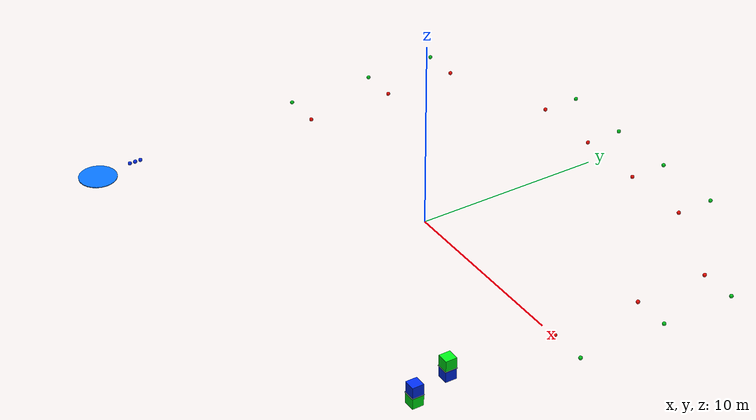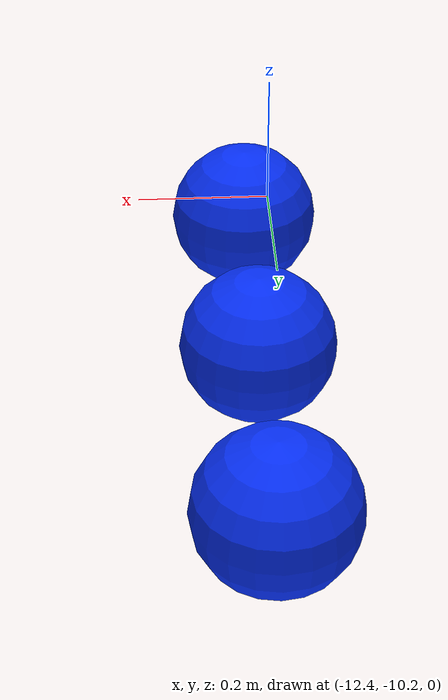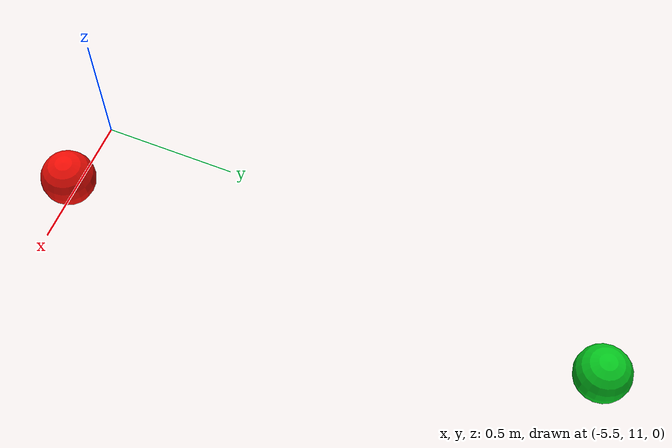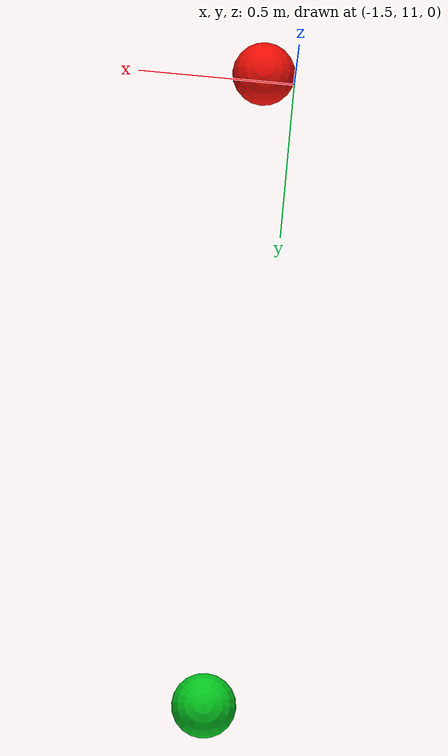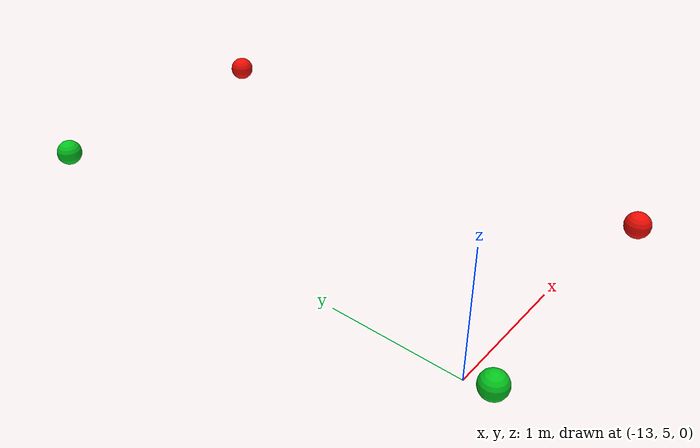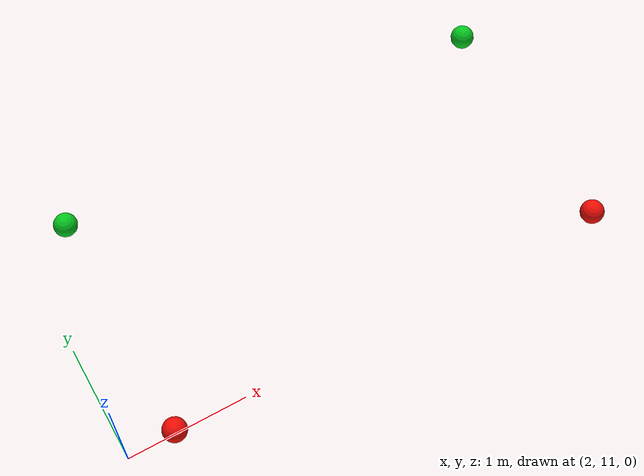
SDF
<sdf version="1.9">
 <world name="kki_2026_lintasan_b">
  <physics name="kki_4ms" type="dart">
   <max_step_size>0.004</max_step_size>
   <real_time_factor>1.0</real_time_factor>
  </physics>
  <spherical_coordinates>
   <surface_model>EARTH_WGS84</surface_model>
   <world_frame_orientation>ENU</world_frame_orientation>
   <latitude_deg>1.470000</latitude_deg>
   <longitude_deg>102.110000</longitude_deg>
   <elevation>0.0</elevation>
   <heading_deg>0</heading_deg>
  </spherical_coordinates>
  <plugin filename="gz-sim-physics-system" name="gz::sim::systems::Physics"/>
  <plugin filename="gz-sim-user-commands-system" name="gz::sim::systems::UserCommands"/>
  <plugin filename="gz-sim-scene-broadcaster-system" name="gz::sim::systems::SceneBroadcaster"/>
  <plugin filename="gz-sim-sensors-system" name="gz::sim::systems::Sensors">
   <render_engine>ogre2</render_engine>
   <background_color>0.70 0.82 0.92</background_color>
  </plugin>
  <plugin filename="gz-sim-imu-system" name="gz::sim::systems::Imu"/>
  <plugin filename="gz-sim-navsat-system" name="gz::sim::systems::NavSat"/>
  <plugin filename="gz-sim-contact-system" name="gz::sim::systems::Contact"/>
  <scene><ambient>0.75 0.78 0.80 1</ambient><background>0.70 0.82 0.92 1</background></scene>
  <light type="directional" name="sun">
   <pose>0 0 40 0 0 0</pose>
   <diffuse>0.95 0.92 0.85 1</diffuse>
   <specular>0.45 0.45 0.45 1</specular>
   <direction>-0.45 0.15 -0.88</direction>
  </light>
  <include>
   <name>start_finish_b</name>
   <pose>-12.200 -11.900 0.020 0.000000 0.000000 0.000000</pose>
   <uri>file:///home/ammar/Documents/asv_simulation/asv_kki_2026_ws/src/asv_gazebo/models/kki_start_finish_marker</uri>
  </include>
  <include>
   <name>docking_b_blue_1</name>
   <pose>-12.350 -10.000 0.100 0.000000 0.000000 0.000000</pose>
   <uri>file:///home/ammar/Documents/asv_simulation/asv_kki_2026_ws/src/asv_gazebo/models/kki_buoy_blue</uri>
  </include>
  <include>
   <name>docking_b_blue_2</name>
   <pose>-12.350 -9.700 0.100 0.000000 0.000000 0.000000</pose>
   <uri>file:///home/ammar/Documents/asv_simulation/asv_kki_2026_ws/src/asv_gazebo/models/kki_buoy_blue</uri>
  </include>
  <include>
   <name>docking_b_blue_3</name>
   <pose>-12.350 -9.400 0.100 0.000000 0.000000 0.000000</pose>
   <uri>file:///home/ammar/Documents/asv_simulation/asv_kki_2026_ws/src/asv_gazebo/models/kki_buoy_blue</uri>
  </include>
  <include>
   <name>left_gate_1_green</name>
   <pose>-13.000 0.000 0.100 0.000000 0.000000 0.000000</pose>
   <uri>file:///home/ammar/Documents/asv_simulation/asv_kki_2026_ws/src/asv_gazebo/models/kki_buoy_green</uri>
  </include>
  <include>
   <name>left_gate_1_red</name>
   <pose>-11.000 0.000 0.100 0.000000 0.000000 0.000000</pose>
   <uri>file:///home/ammar/Documents/asv_simulation/asv_kki_2026_ws/src/asv_gazebo/models/kki_buoy_red</uri>
  </include>
  <include>
   <name>left_gate_2_green</name>
   <pose>-13.000 4.800 0.100 0.000000 0.000000 0.000000</pose>
   <uri>file:///home/ammar/Documents/asv_simulation/asv_kki_2026_ws/src/asv_gazebo/models/kki_buoy_green</uri>
  </include>
  <include>
   <name>left_gate_2_red</name>
   <pose>-11.000 4.800 0.100 0.000000 0.000000 0.000000</pose>
   <uri>file:///home/ammar/Documents/asv_simulation/asv_kki_2026_ws/src/asv_gazebo/models/kki_buoy_red</uri>
  </include>
  <include>
   <name>left_gate_3_green</name>
   <pose>-13.000 8.800 0.100 0.000000 0.000000 0.000000</pose>
   <uri>file:///home/ammar/Documents/asv_simulation/asv_kki_2026_ws/src/asv_gazebo/models/kki_buoy_green</uri>
  </include>
  <include>
   <name>left_gate_3_red</name>
   <pose>-11.000 8.800 0.100 0.000000 0.000000 0.000000</pose>
   <uri>file:///home/ammar/Documents/asv_simulation/asv_kki_2026_ws/src/asv_gazebo/models/kki_buoy_red</uri>
  </include>
  <include>
   <name>top_gate_4_green</name>
   <pose>-5.200 13.000 0.100 0.000000 0.000000 0.000000</pose>
   <uri>file:///home/ammar/Documents/asv_simulation/asv_kki_2026_ws/src/asv_gazebo/models/kki_buoy_green</uri>
  </include>
  <include>
   <name>top_gate_4_red</name>
   <pose>-5.200 11.000 0.100 0.000000 0.000000 0.000000</pose>
   <uri>file:///home/ammar/Documents/asv_simulation/asv_kki_2026_ws/src/asv_gazebo/models/kki_buoy_red</uri>
  </include>
  <include>
   <name>top_gate_5_green</name>
   <pose>-1.400 13.000 0.100 0.000000 0.000000 0.000000</pose>
   <uri>file:///home/ammar/Documents/asv_simulation/asv_kki_2026_ws/src/asv_gazebo/models/kki_buoy_green</uri>
  </include>
  <include>
   <name>top_gate_5_red</name>
   <pose>-1.400 11.000 0.100 0.000000 0.000000 0.000000</pose>
   <uri>file:///home/ammar/Documents/asv_simulation/asv_kki_2026_ws/src/asv_gazebo/models/kki_buoy_red</uri>
  </include>
  <include>
   <name>top_gate_6_green</name>
   <pose>2.400 13.000 0.100 0.000000 0.000000 0.000000</pose>
   <uri>file:///home/ammar/Documents/asv_simulation/asv_kki_2026_ws/src/asv_gazebo/models/kki_buoy_green</uri>
  </include>
  <include>
   <name>top_gate_6_red</name>
   <pose>2.400 11.000 0.100 0.000000 0.000000 0.000000</pose>
   <uri>file:///home/ammar/Documents/asv_simulation/asv_kki_2026_ws/src/asv_gazebo/models/kki_buoy_red</uri>
  </include>
  <include>
   <name>top_gate_7_green</name>
   <pose>6.200 13.000 0.100 0.000000 0.000000 0.000000</pose>
   <uri>file:///home/ammar/Documents/asv_simulation/asv_kki_2026_ws/src/asv_gazebo/models/kki_buoy_green</uri>
  </include>
  <include>
   <name>top_gate_7_red</name>
   <pose>6.200 11.000 0.100 0.000000 0.000000 0.000000</pose>
   <uri>file:///home/ammar/Documents/asv_simulation/asv_kki_2026_ws/src/asv_gazebo/models/kki_buoy_red</uri>
  </include>
  <include>
   <name>right_gate_8_red</name>
   <pose>11.000 0.000 0.100 0.000000 0.000000 0.000000</pose>
   <uri>file:///home/ammar/Documents/asv_simulation/asv_kki_2026_ws/src/asv_gazebo/models/kki_buoy_red</uri>
  </include>
  <include>
   <name>right_gate_8_green</name>
   <pose>13.000 0.000 0.100 0.000000 0.000000 0.000000</pose>
   <uri>file:///home/ammar/Documents/asv_simulation/asv_kki_2026_ws/src/asv_gazebo/models/kki_buoy_green</uri>
  </include>
  <include>
   <name>right_gate_9_red</name>
   <pose>11.000 4.800 0.100 0.000000 0.000000 0.000000</pose>
   <uri>file:///home/ammar/Documents/asv_simulation/asv_kki_2026_ws/src/asv_gazebo/models/kki_buoy_red</uri>
  </include>
  <include>
   <name>right_gate_9_green</name>
   <pose>13.000 4.800 0.100 0.000000 0.000000 0.000000</pose>
   <uri>file:///home/ammar/Documents/asv_simulation/asv_kki_2026_ws/src/asv_gazebo/models/kki_buoy_green</uri>
  </include>
  <include>
   <name>right_gate_10_red</name>
   <pose>11.000 8.800 0.100 0.000000 0.000000 0.000000</pose>
   <uri>file:///home/ammar/Documents/asv_simulation/asv_kki_2026_ws/src/asv_gazebo/models/kki_buoy_red</uri>
  </include>
  <include>
   <name>right_gate_10_green</name>
   <pose>13.000 8.800 0.100 0.000000 0.000000 0.000000</pose>
   <uri>file:///home/ammar/Documents/asv_simulation/asv_kki_2026_ws/src/asv_gazebo/models/kki_buoy_green</uri>
  </include>
  <include>
   <name>green_top_target_b</name>
   <pose>10.200 -5.400 0.000 0.000000 0.000000 0.000000</pose>
   <uri>file:///home/ammar/Documents/asv_simulation/asv_kki_2026_ws/src/asv_gazebo/models/kki_surface_target</uri>
  </include>
  <include>
   <name>blue_top_target_b</name>
   <pose>11.000 -7.700 0.000 0.000000 0.000000 0.000000</pose>
   <uri>file:///home/ammar/Documents/asv_simulation/asv_kki_2026_ws/src/asv_gazebo/models/kki_underwater_target</uri>
  </include>
 </world>
</sdf>

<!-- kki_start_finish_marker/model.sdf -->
<sdf version="1.9">
  <model name="kki_start_finish_marker">
    <static>true</static>
    <link name="base_link">
      <visual name="start_finish_visual">
        <pose>0 0 0.02 0 0 0</pose>
        <geometry>
          <cylinder>
            <radius>1.0</radius>
            <length>0.04</length>
          </cylinder>
        </geometry>
        <material>
          <ambient>0.02 0.45 1.0 1</ambient>
          <diffuse>0.02 0.45 1.0 1</diffuse>
          <specular>0.25 0.25 0.25 1</specular>
        </material>
      </visual>
      <collision name="collision">
        <!-- Thin marker collision keeps the start/finish object detectable
             without acting like a tall obstacle. -->
        <pose>0 0 0.02 0 0 0</pose>
        <geometry>
          <cylinder>
            <radius>1.0</radius>
            <length>0.04</length>
          </cylinder>
        </geometry>
      </collision>
      <sensor name="object_contact_sensor" type="contact">
        <!-- Start/finish contact is detectable without making the marker tall. -->
        <contact>
          <collision>collision</collision>
          <topic>/kki/collisions/objects</topic>
        </contact>
        <always_on>true</always_on>
        <update_rate>30</update_rate>
      </sensor>
    </link>
  </model>
</sdf>

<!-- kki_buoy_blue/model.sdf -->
<sdf version="1.9">
  <model name="kki_buoy_blue">
    <static>true</static>
    <!-- Round buoy based on:
         /home/ammar/Documents/asv_simulation/asv_wave_sim/gz-waves-models/models/spherical_buoy
         Kept static so docking marker positions remain fixed in the KKI course. -->
    <link name="base_link">
      <visual name="round_buoy_body">
        <geometry><sphere><radius>0.10</radius></sphere></geometry>
        <material>
          <ambient>0.02 0.18 0.95 1</ambient>
          <diffuse>0.02 0.18 0.95 1</diffuse>
          <specular>0.65 0.65 0.65 1</specular>
          <double_sided>true</double_sided>
        </material>
      </visual>

      <collision name="collision">
        <!-- 20 cm diameter docking buoy collision, matching the visual sphere. -->
        <geometry><sphere><radius>0.10</radius></sphere></geometry>
      </collision>
      <sensor name="object_contact_sensor" type="contact">
        <!-- Object-side contact makes docking buoy hits visible for scoring. -->
        <contact>
          <collision>collision</collision>
          <topic>/kki/collisions/objects</topic>
        </contact>
        <always_on>true</always_on>
        <update_rate>30</update_rate>
      </sensor>
    </link>
  </model>
</sdf>

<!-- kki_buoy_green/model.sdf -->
<sdf version="1.9">
  <model name="kki_buoy_green">
    <static>true</static>
    <!-- Round buoy based on:
         /home/ammar/Documents/asv_simulation/asv_wave_sim/gz-waves-models/models/spherical_buoy
         Kept static so race marker positions remain fixed in the KKI course. -->
    <link name="base_link">
      <visual name="round_buoy_body">
        <geometry><sphere><radius>0.10</radius></sphere></geometry>
        <material>
          <ambient>0.02 0.78 0.12 1</ambient>
          <diffuse>0.02 0.78 0.12 1</diffuse>
          <specular>0.65 0.65 0.65 1</specular>
          <double_sided>true</double_sided>
        </material>
      </visual>

      <collision name="collision">
        <!-- 20 cm diameter buoy collision, matching the visual sphere. -->
        <geometry><sphere><radius>0.10</radius></sphere></geometry>
      </collision>
      <sensor name="object_contact_sensor" type="contact">
        <!-- Object-side contact makes buoy hits visible on /kki/collisions/objects. -->
        <contact>
          <collision>collision</collision>
          <topic>/kki/collisions/objects</topic>
        </contact>
        <always_on>true</always_on>
        <update_rate>30</update_rate>
      </sensor>
    </link>
  </model>
</sdf>

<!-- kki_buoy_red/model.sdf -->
<sdf version="1.9">
  <model name="kki_buoy_red">
    <static>true</static>
    <!-- Round buoy based on:
         /home/ammar/Documents/asv_simulation/asv_wave_sim/gz-waves-models/models/spherical_buoy
         Kept static so race marker positions remain fixed in the KKI course. -->
    <link name="base_link">
      <visual name="round_buoy_body">
        <geometry><sphere><radius>0.10</radius></sphere></geometry>
        <material>
          <ambient>0.95 0.05 0.02 1</ambient>
          <diffuse>0.95 0.05 0.02 1</diffuse>
          <specular>0.65 0.65 0.65 1</specular>
          <double_sided>true</double_sided>
        </material>
      </visual>

      <collision name="collision">
        <!-- 20 cm diameter buoy collision, matching the visual sphere. -->
        <geometry><sphere><radius>0.10</radius></sphere></geometry>
      </collision>
      <sensor name="object_contact_sensor" type="contact">
        <!-- Object-side contact makes buoy hits visible on /kki/collisions/objects. -->
        <contact>
          <collision>collision</collision>
          <topic>/kki/collisions/objects</topic>
        </contact>
        <always_on>true</always_on>
        <update_rate>30</update_rate>
      </sensor>
    </link>
  </model>
</sdf>

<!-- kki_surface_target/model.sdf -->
<sdf version="1.9">
  <model name="kki_surface_target">
    <static>true</static>
    <link name="base_link">
      <visual name="green_box_above_water">
        <cast_shadows>true</cast_shadows>
        <pose>0 0 0.300 0 0 0</pose>
        <geometry>
          <box>
            <size>0.60 0.60 0.60</size>
          </box>
        </geometry>
        <material>
          <ambient>0.0 0.95 0.10 1</ambient>
          <diffuse>0.0 0.95 0.10 1</diffuse>
          <emissive>0.0 0.18 0.02 1</emissive>
        </material>
      </visual>
      <visual name="blue_box_under_water">
        <cast_shadows>false</cast_shadows>
        <pose>0 0 -0.300 0 0 0</pose>
        <geometry>
          <box>
            <size>0.60 0.60 0.60</size>
          </box>
        </geometry>
        <material>
          <ambient>0.00 0.18 0.95 0.92</ambient>
          <diffuse>0.00 0.18 0.95 0.92</diffuse>
          <emissive>0.00 0.03 0.18 1</emissive>
        </material>
      </visual>
      <visual name="waterline_lip_front">
        <cast_shadows>false</cast_shadows>
        <pose>0 0.320 0.008 0 0 0</pose>
        <geometry>
          <box>
            <size>0.64 0.030 0.016</size>
          </box>
        </geometry>
        <material>
          <ambient>0.02 0.08 0.08 1</ambient>
          <diffuse>0.02 0.08 0.08 1</diffuse>
        </material>
      </visual>
      <visual name="waterline_lip_back">
        <cast_shadows>false</cast_shadows>
        <pose>0 -0.320 0.008 0 0 0</pose>
        <geometry><box><size>0.64 0.030 0.016</size></box></geometry>
        <material><ambient>0.02 0.08 0.08 1</ambient><diffuse>0.02 0.08 0.08 1</diffuse></material>
      </visual>
      <visual name="waterline_lip_left">
        <cast_shadows>false</cast_shadows>
        <pose>-0.320 0 0.008 0 0 0</pose>
        <geometry><box><size>0.030 0.64 0.016</size></box></geometry>
        <material><ambient>0.02 0.08 0.08 1</ambient><diffuse>0.02 0.08 0.08 1</diffuse></material>
      </visual>
      <visual name="waterline_lip_right">
        <cast_shadows>false</cast_shadows>
        <pose>0.320 0 0.008 0 0 0</pose>
        <geometry><box><size>0.030 0.64 0.016</size></box></geometry>
        <material><ambient>0.02 0.08 0.08 1</ambient><diffuse>0.02 0.08 0.08 1</diffuse></material>
      </visual>
      <collision name="collision">
        <!-- Full green/blue surveillance box collision: 60 x 60 x 120 cm. -->
        <pose>0 0 0.000 0 0 0</pose>
        <geometry>
          <box>
            <size>0.60 0.60 1.20</size>
          </box>
        </geometry>
      </collision>
      <sensor name="object_contact_sensor" type="contact">
        <!-- Target box contact is reported separately from camera capture logic. -->
        <contact>
          <collision>collision</collision>
          <topic>/kki/collisions/objects</topic>
        </contact>
        <always_on>true</always_on>
        <update_rate>30</update_rate>
      </sensor>
    </link>
  </model>
</sdf>

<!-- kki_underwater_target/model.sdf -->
<sdf version="1.9">
  <model name="kki_underwater_target">
    <static>true</static>
    <link name="base_link">
      <visual name="blue_box_above_water">
        <cast_shadows>true</cast_shadows>
        <pose>0 0 0.300 0 0 0</pose>
        <geometry>
          <box>
            <size>0.60 0.60 0.60</size>
          </box>
        </geometry>
        <material>
          <ambient>0.00 0.18 0.95 1</ambient>
          <diffuse>0.00 0.18 0.95 1</diffuse>
          <emissive>0.00 0.03 0.18 1</emissive>
        </material>
      </visual>
      <visual name="green_box_under_water">
        <cast_shadows>false</cast_shadows>
        <pose>0 0 -0.300 0 0 0</pose>
        <geometry>
          <box>
            <size>0.60 0.60 0.60</size>
          </box>
        </geometry>
        <material>
          <ambient>0.0 0.95 0.10 0.92</ambient>
          <diffuse>0.0 0.95 0.10 0.92</diffuse>
          <emissive>0.0 0.18 0.02 1</emissive>
        </material>
      </visual>
      <visual name="waterline_lip_front">
        <cast_shadows>false</cast_shadows>
        <pose>0 0.320 0.008 0 0 0</pose>
        <geometry>
          <box>
            <size>0.64 0.030 0.016</size>
          </box>
        </geometry>
        <material>
          <ambient>0.02 0.08 0.08 1</ambient>
          <diffuse>0.02 0.08 0.08 1</diffuse>
        </material>
      </visual>
      <visual name="waterline_lip_back">
        <cast_shadows>false</cast_shadows>
        <pose>0 -0.320 0.008 0 0 0</pose>
        <geometry><box><size>0.64 0.030 0.016</size></box></geometry>
        <material><ambient>0.02 0.08 0.08 1</ambient><diffuse>0.02 0.08 0.08 1</diffuse></material>
      </visual>
      <visual name="waterline_lip_left">
        <cast_shadows>false</cast_shadows>
        <pose>-0.320 0 0.008 0 0 0</pose>
        <geometry><box><size>0.030 0.64 0.016</size></box></geometry>
        <material><ambient>0.02 0.08 0.08 1</ambient><diffuse>0.02 0.08 0.08 1</diffuse></material>
      </visual>
      <visual name="waterline_lip_right">
        <cast_shadows>false</cast_shadows>
        <pose>0.320 0 0.008 0 0 0</pose>
        <geometry><box><size>0.030 0.64 0.016</size></box></geometry>
        <material><ambient>0.02 0.08 0.08 1</ambient><diffuse>0.02 0.08 0.08 1</diffuse></material>
      </visual>
      <collision name="collision">
        <!-- Full inverted surveillance box collision: 60 x 60 x 120 cm. -->
        <pose>0 0 0.000 0 0 0</pose>
        <geometry>
          <box>
            <size>0.60 0.60 1.20</size>
          </box>
        </geometry>
      </collision>
      <sensor name="object_contact_sensor" type="contact">
        <!-- Target box contact is reported separately from camera capture logic. -->
        <contact>
          <collision>collision</collision>
          <topic>/kki/collisions/objects</topic>
        </contact>
        <always_on>true</always_on>
        <update_rate>30</update_rate>
      </sensor>
    </link>
  </model>
</sdf>
